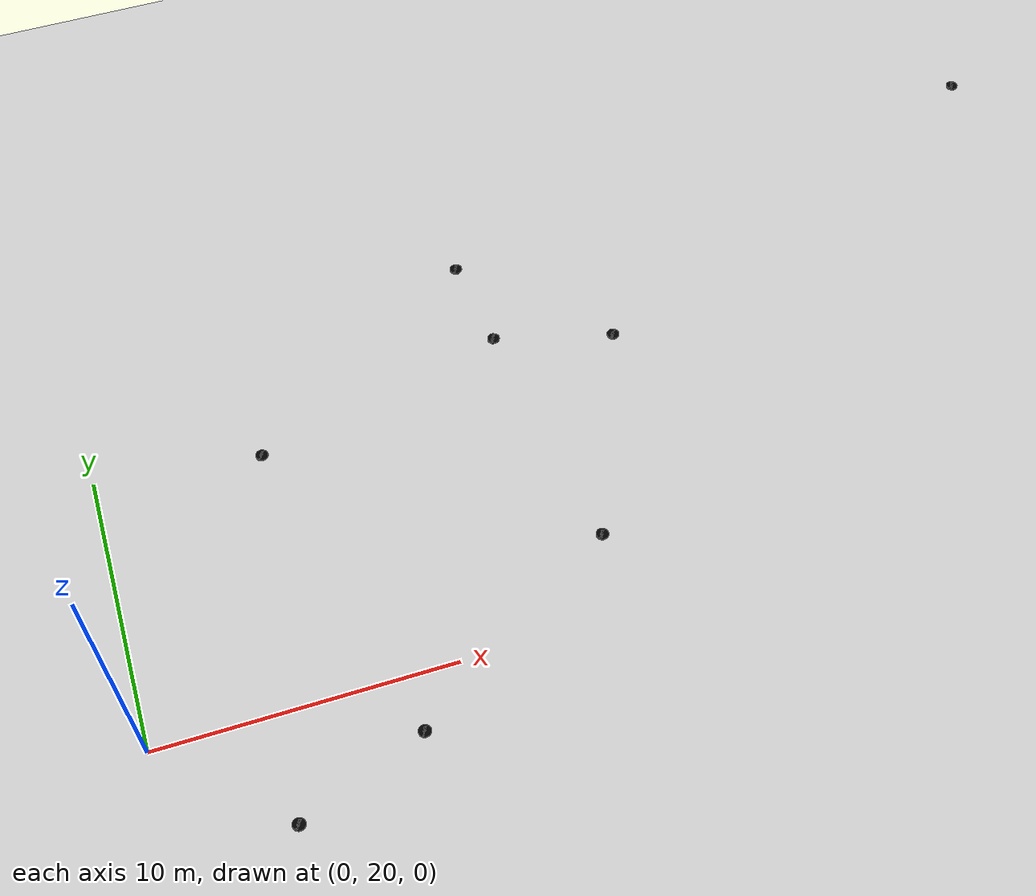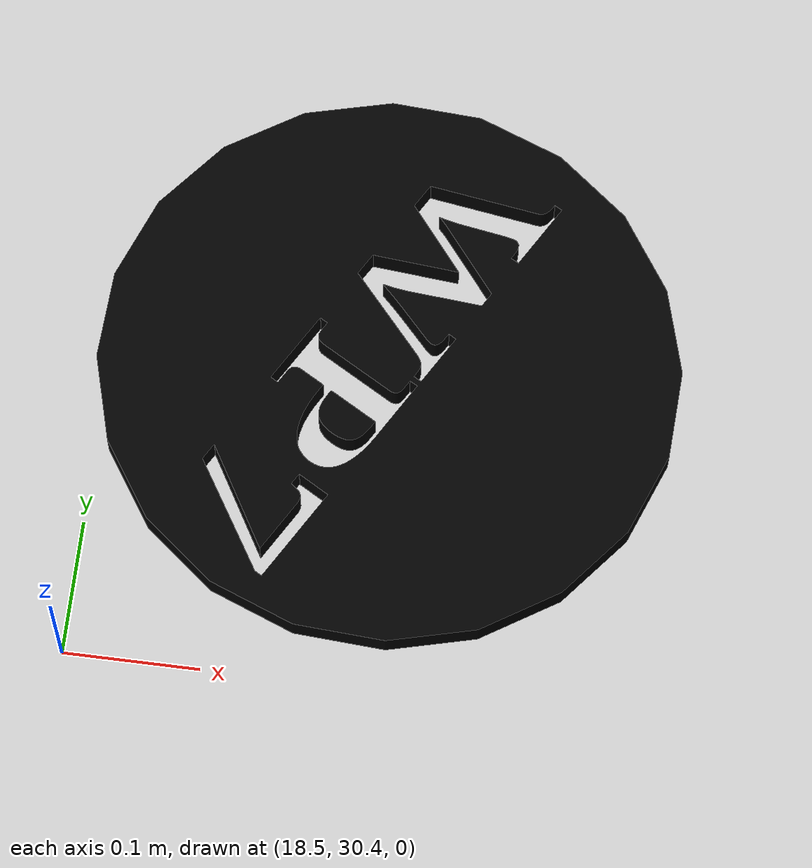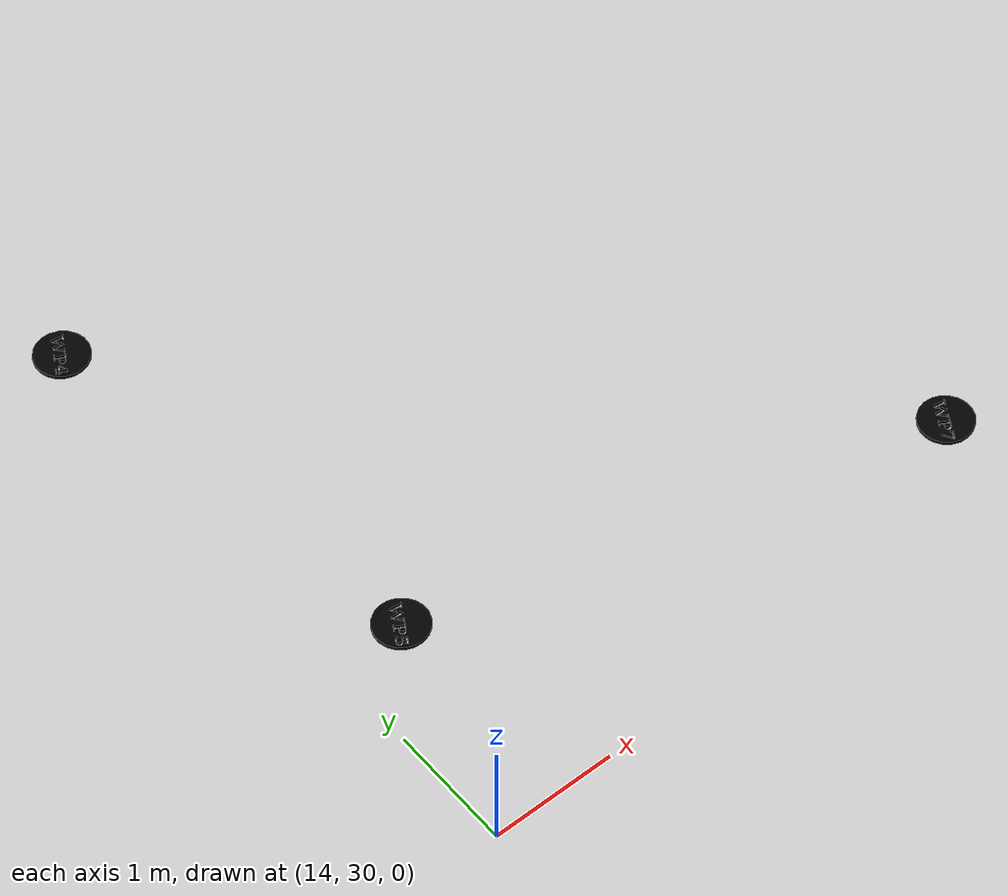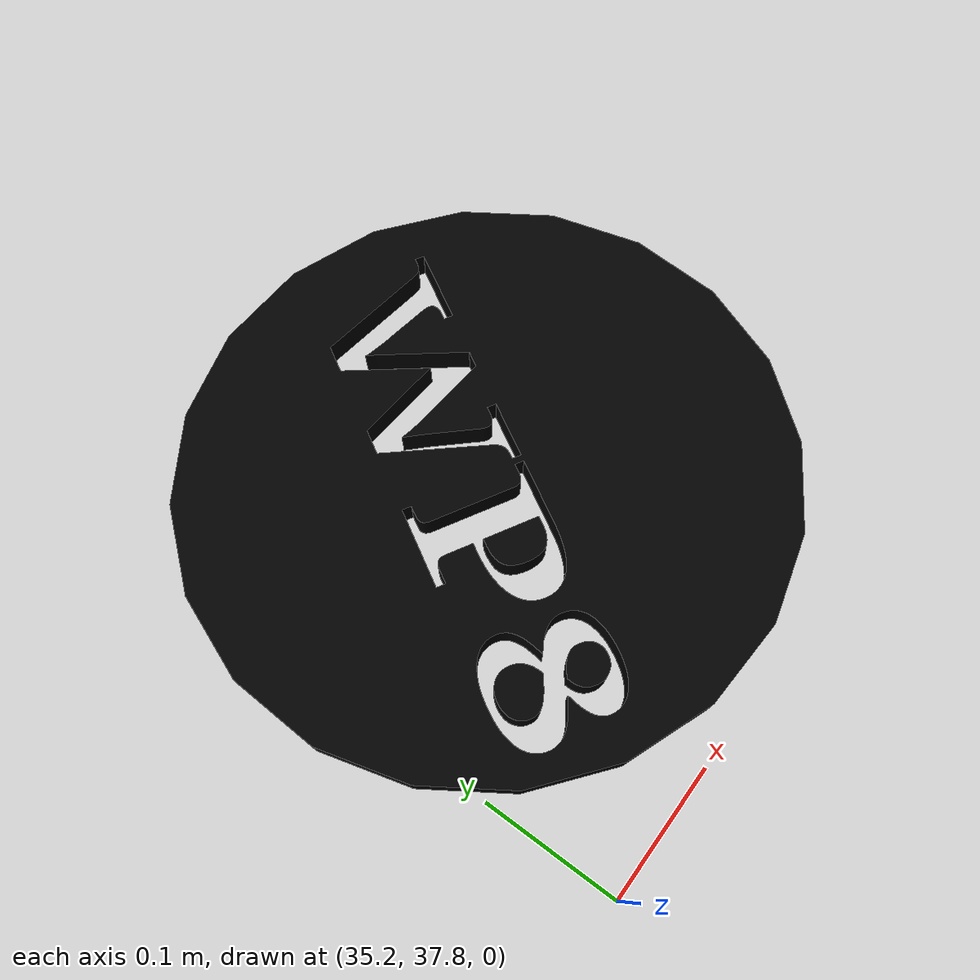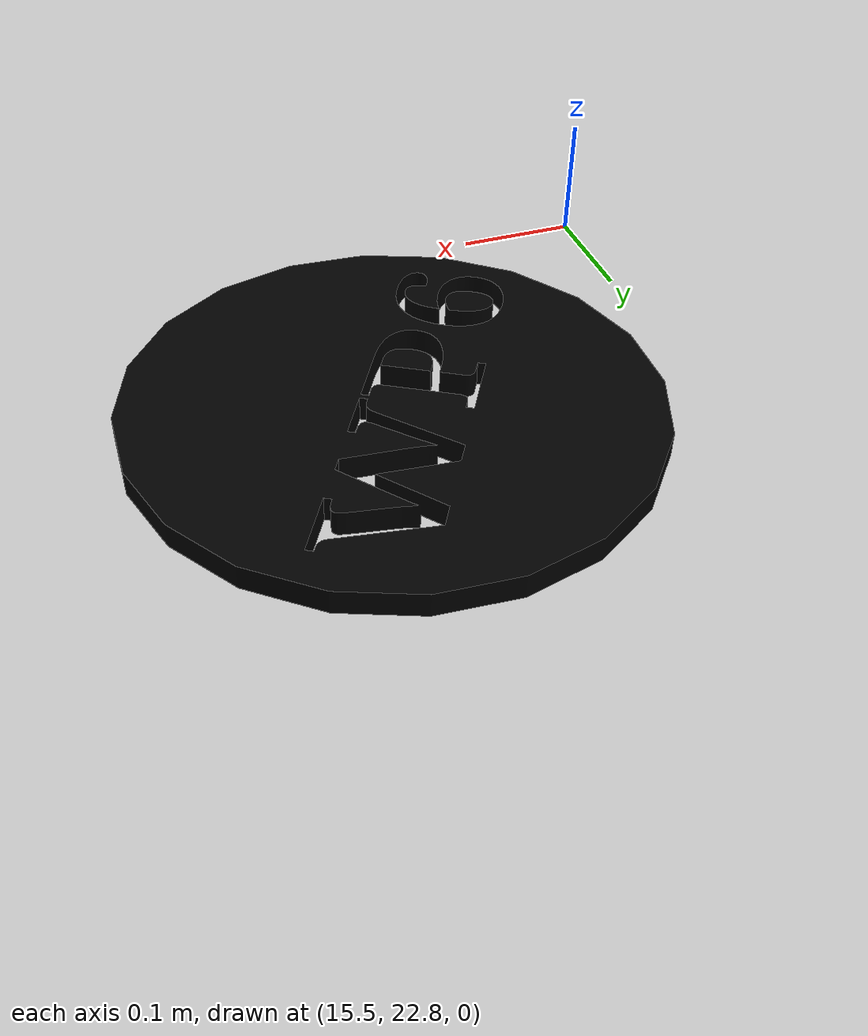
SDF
<sdf version="1.6">
 <world name="default">
  <light type="directional" name="sun">
   <cast_shadows>false</cast_shadows>
   <pose>50 0 50 0 0 0</pose>
   <diffuse>0.8 0.8 0.8 1</diffuse>
   <specular>0.2 0.2 0.2 1</specular>
   <attenuation>
    <range>1000</range>
    <constant>0.9</constant>
    <linear>0.01</linear>
    <quadratic>0.001</quadratic>
   </attenuation>
   <direction>-0.5 0.1 -0.9</direction>
  </light>
  <model name="ground_plane">
   <static>true</static>
   <link name="link">
    <collision name="collision">
     <geometry><plane><normal>0 0 1</normal><size>100 100</size></plane></geometry>
    </collision>
    <visual name="visual">
     <geometry><plane><normal>0 0 1</normal><size>100 100</size></plane></geometry>
     <material>
      <ambient>0.8 0.8 0.8 1</ambient>
      <diffuse>0.8 0.8 0.8 1</diffuse>
      <specular>0.8 0.8 0.8 1</specular>
      <specular>0.8 0.8 0.8 1</specular>
     </material>
    </visual>
   </link>
  </model>
  <physics name="1ms" type="ignored">
   <max_step_size>0.001</max_step_size>
   <real_time_factor>1.0</real_time_factor>
  </physics>
  <model name="wp1">
   <pose>4.1173 16.2684 -0.38 0 0 -2.094</pose>
   <static>true</static>
   <link name="link">
    <visual name="wp1_visual">
     <geometry><mesh><uri>model://dartec/meshes/wp1.stl</uri><scale>0.009 0.009 0.1</scale></mesh></geometry>
     <material>
      <ambient>0 0 0 1</ambient>
      <diffuse>0 0 0 1</diffuse>
      <specular>0.1 0.1 0.1 1</specular>
      <emissive>0 0 0 1</emissive>
     </material>
    </visual>
   </link>
  </model>
  <model name="wp2">
   <pose>8.5 18 -0.38 0 0 -2.094</pose>
   <static>true</static>
   <link name="link">
    <visual name="wp2_visual">
     <geometry><mesh><uri>model://dartec/meshes/wp2.stl</uri><scale>0.009 0.009 0.1</scale></mesh></geometry>
     <material>
      <ambient>0 0 0 1</ambient>
      <diffuse>0 0 0 1</diffuse>
      <specular>0.1 0.1 0.1 1</specular>
      <emissive>0 0 0 1</emissive>
     </material>
    </visual>
   </link>
  </model>
  <model name="wp3">
   <pose>5.8600 29.3587 -0.38 0 0 -2.094</pose>
   <static>true</static>
   <link name="link">
    <visual name="wp3_visual">
     <geometry><mesh><uri>model://dartec/meshes/wp3.stl</uri><scale>0.009 0.009 0.1</scale></mesh></geometry>
     <material>
      <ambient>0 0 0 1</ambient>
      <diffuse>0 0 0 1</diffuse>
      <specular>0.1 0.1 0.1 1</specular>
      <emissive>0 0 0 1</emissive>
     </material>
    </visual>
   </link>
  </model>
  <model name="wp4">
   <pose>14.3590 35.0567 -0.38 0 0 -2.094</pose>
   <static>true</static>
   <link name="link">
    <visual name="wp4_visual">
     <geometry><mesh><uri>model://dartec/meshes/wp4.stl</uri><scale>0.009 0.009 0.1</scale></mesh></geometry>
     <material>
      <ambient>0 0 0 1</ambient>
      <diffuse>0 0 0 1</diffuse>
      <specular>0.1 0.1 0.1 1</specular>
      <emissive>0 0 0 1</emissive>
     </material>
    </visual>
   </link>
  </model>
  <model name="wp5">
   <pose>14.7822 31.6502 -0.38 0 0 -2.094</pose>
   <static>true</static>
   <link name="link">
    <visual name="wp4_visual">
     <geometry><mesh><uri>model://dartec/meshes/wp5.stl</uri><scale>0.009 0.009 0.1</scale></mesh></geometry>
     <material>
      <ambient>0 0 0 1</ambient>
      <diffuse>0 0 0 1</diffuse>
      <specular>0.1 0.1 0.1 1</specular>
      <emissive>0 0 0 1</emissive>
     </material>
    </visual>
   </link>
  </model>
  <model name="wp6">
   <pose>15.9510 22.9266 -0.38 0 0 -2.094</pose>
   <static>true</static>
   <link name="link">
    <visual name="wp4_visual">
     <geometry><mesh><uri>model://dartec/meshes/wp6.stl</uri><scale>0.009 0.009 0.1</scale></mesh></geometry>
     <material>
      <ambient>0 0 0 1</ambient>
      <diffuse>0 0 0 1</diffuse>
      <specular>0.1 0.1 0.1 1</specular>
      <emissive>0 0 0 1</emissive>
     </material>
    </visual>
   </link>
  </model>
  <model name="wp7">
   <pose>18.9063 30.5430 -0.38 0 0 -2.094</pose>
   <static>true</static>
   <link name="link">
    <visual name="wp4_visual">
     <geometry><mesh><uri>model://dartec/meshes/wp7.stl</uri><scale>0.009 0.009 0.1</scale></mesh></geometry>
     <material>
      <ambient>0 0 0 1</ambient>
      <diffuse>0 0 0 1</diffuse>
      <specular>0.1 0.1 0.1 1</specular>
      <emissive>0 0 0 1</emissive>
     </material>
    </visual>
   </link>
  </model>
  <model name="wp8">
   <pose>35.5772 37.9257 -0.38 0 0 -2.094</pose>
   <static>true</static>
   <link name="link">
    <visual name="wp4_visual">
     <geometry><mesh><uri>model://dartec/meshes/wp8.stl</uri><scale>0.009 0.009 0.1</scale></mesh></geometry>
     <material>
      <ambient>0 0 0 1</ambient>
      <diffuse>0 0 0 1</diffuse>
      <specular>0.1 0.1 0.1 1</specular>
      <emissive>0 0 0 1</emissive>
     </material>
    </visual>
   </link>
  </model>
 </world>
</sdf>
